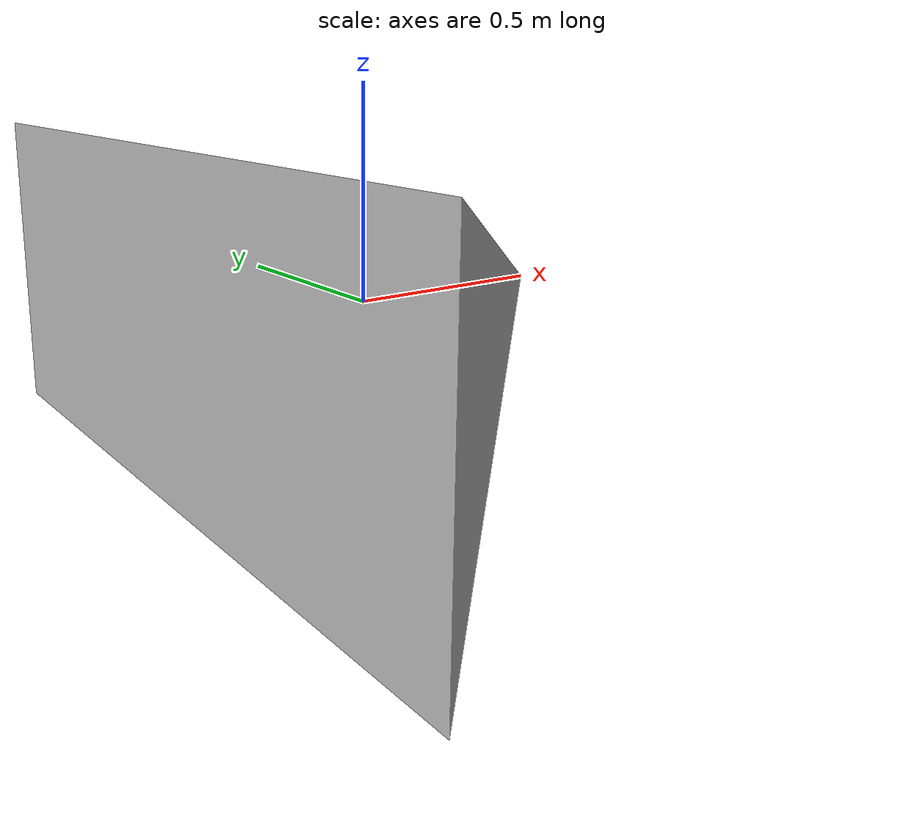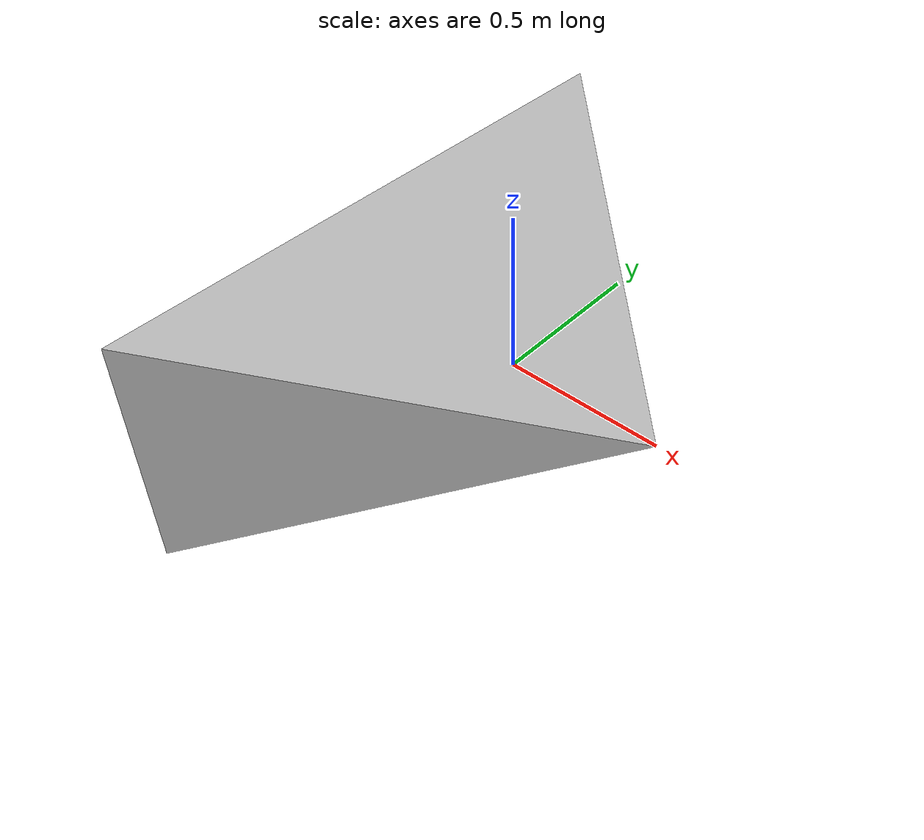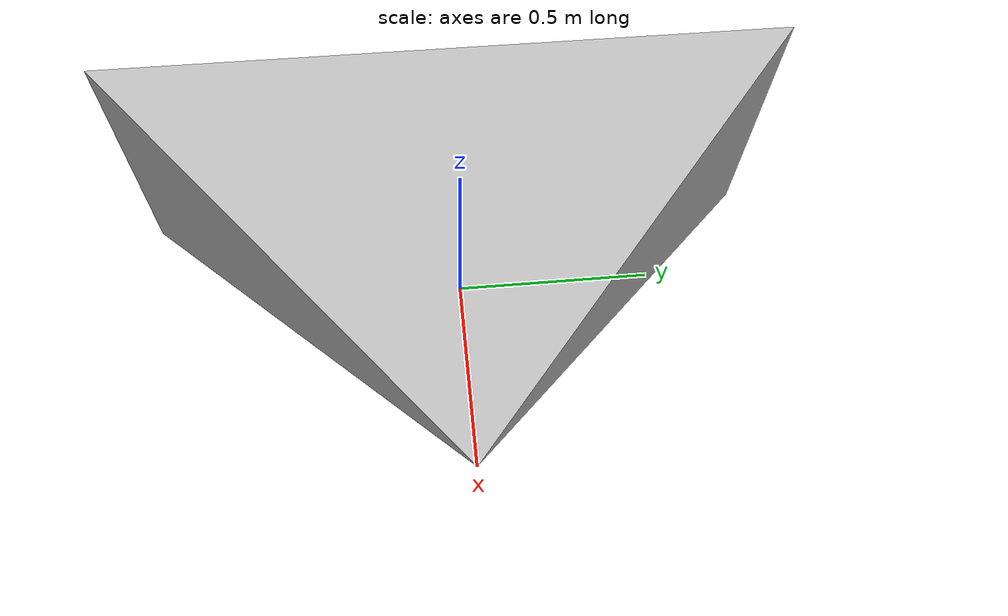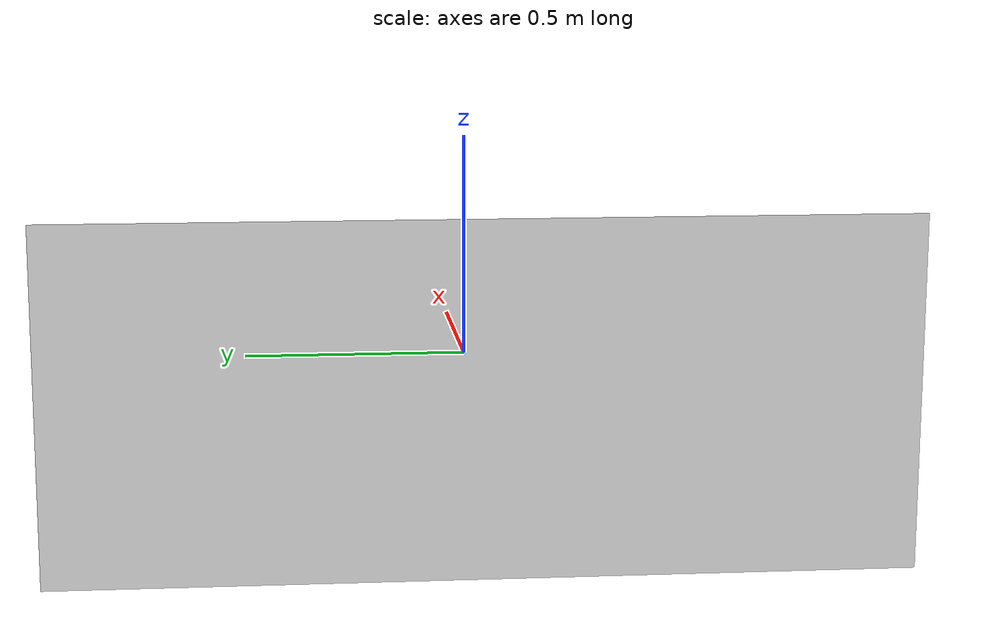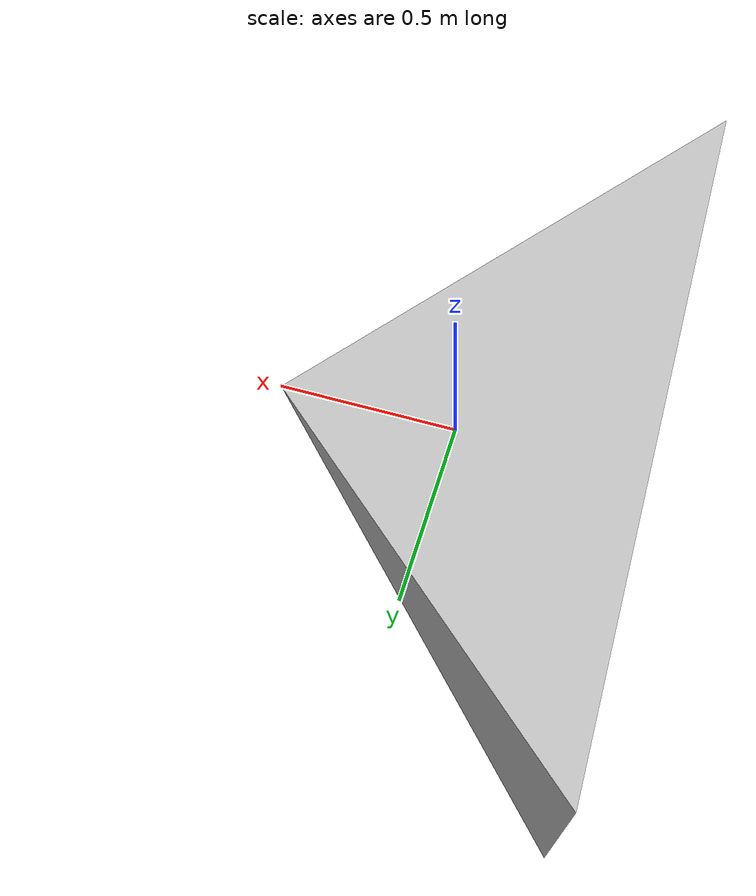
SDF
<?xml version="1.0"?>
<!-- This sdf file is based on schunk_wsg_50.sdf -->
<sdf version="1.7">
<model name="rectangular_pyramid">
  <link name="base">
    <pose>0 0 0 0 0 0</pose>
    <visual name="visual">
      <geometry>
        <mesh>
          <scale>1 1 1</scale>
          <uri>package://symmetries/models/pyramids/rectangular_pyramid.obj</uri>
        </mesh>
      </geometry>
    </visual>
    <collision name="base_collision">
      <geometry>
        <mesh>
          <scale>1 1 1</scale>
          <uri>package://symmetries/models/pyramids/rectangular_pyramid.obj</uri>
        </mesh>
      </geometry>
    </collision>
  </link>
</model>
</sdf>
